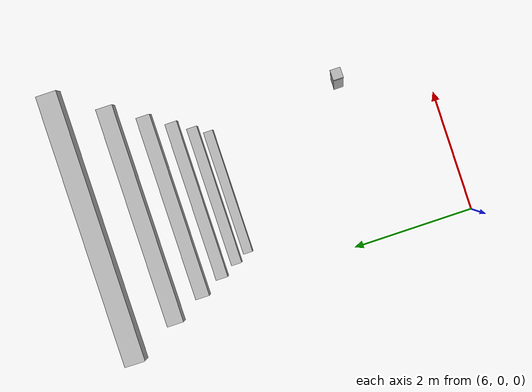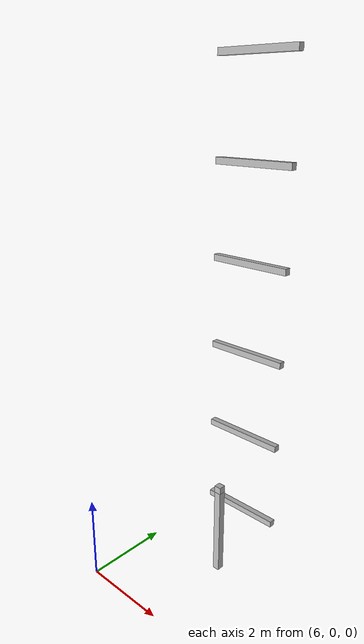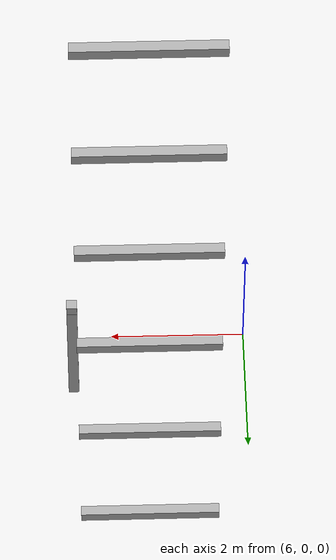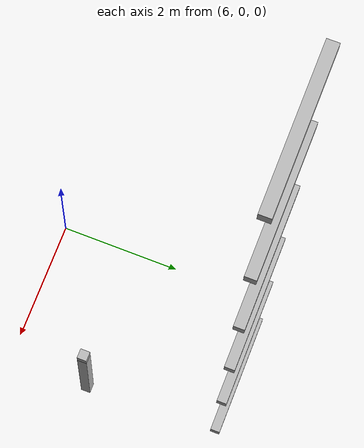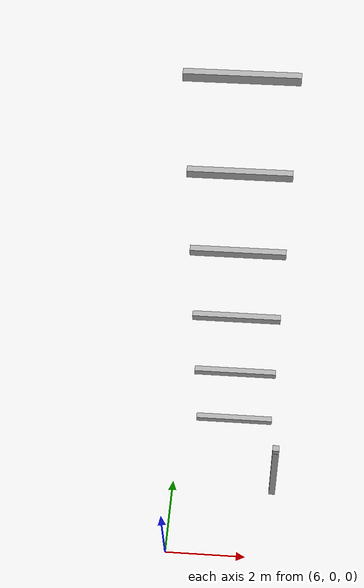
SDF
<sdf version="1.7">
 <world name="default">
  <model name="orthogonal_747_2.000.15_TS">
   <static>1</static>
   <link name="x_link_1_4_6">
    <inertial>
     <mass>1</mass>
     <inertia>
      <ixx>0.166667</ixx>
      <ixy>0</ixy>
      <ixz>0</ixz>
      <iyy>0.166667</iyy>
      <iyz>0</iyz>
      <izz>0.166667</izz>
     </inertia>
    </inertial>
    <pose>13.975 8.6 3.225 0 -0 0</pose>
    <visual name="visual_0">
     <laser_retro>1618</laser_retro>
     <geometry><box><size>2 1e-06 0.15</size></box></geometry>
     <material>
      <script><name>Gazebo/Grey</name><uri>file://media/materials/scripts/gazebo.material</uri></script>
      <shader type="pixel"><normal_map>__default__</normal_map></shader>
      <ambient>0.678 0.498 0.659 1</ambient>
      <diffuse>0.7 0.7 0.7 1</diffuse>
      <specular>0.01 0.01 0.01 1</specular>
      <emissive>0 0 0 1</emissive>
     </material>
     <pose>0 -0.075 0 0 -0 0</pose>
     <transparency>1</transparency>
    </visual>
    <visual name="visual_1">
     <laser_retro>1619</laser_retro>
     <geometry><box><size>2 1e-06 0.15</size></box></geometry>
     <material>
      <script><name>Gazebo/Grey</name><uri>file://media/materials/scripts/gazebo.material</uri></script>
      <shader type="pixel"><normal_map>__default__</normal_map></shader>
      <ambient>0.447 0.624 0.812 1</ambient>
      <diffuse>0.7 0.7 0.7 1</diffuse>
      <specular>0.01 0.01 0.01 1</specular>
      <emissive>0 0 0 1</emissive>
     </material>
     <pose>0 0.075 0 0 -0 0</pose>
     <transparency>1</transparency>
    </visual>
    <visual name="visual_2">
     <laser_retro>1620</laser_retro>
     <geometry><box><size>2 0.15 1e-06</size></box></geometry>
     <material>
      <script><name>Gazebo/Grey</name><uri>file://media/materials/scripts/gazebo.material</uri></script>
      <shader type="pixel"><normal_map>__default__</normal_map></shader>
      <ambient>0.988 0.686 0.243 1</ambient>
      <diffuse>0.7 0.7 0.7 1</diffuse>
      <specular>0.01 0.01 0.01 1</specular>
      <emissive>0 0 0 1</emissive>
     </material>
     <pose>0 0 -0.075 0 -0 0</pose>
     <transparency>1</transparency>
    </visual>
    <visual name="visual_3">
     <laser_retro>1621</laser_retro>
     <geometry><box><size>1e-06 0.15 0.15</size></box></geometry>
     <material>
      <script><name>Gazebo/Grey</name><uri>file://media/materials/scripts/gazebo.material</uri></script>
      <shader type="pixel"><normal_map>__default__</normal_map></shader>
      <ambient>0.988 0.914 0.31 1</ambient>
      <diffuse>0.7 0.7 0.7 1</diffuse>
      <specular>0.01 0.01 0.01 1</specular>
      <emissive>0 0 0 1</emissive>
     </material>
     <pose>1 0 0 0 -0 0</pose>
     <transparency>1</transparency>
    </visual>
    <visual name="visual_4">
     <laser_retro>1622</laser_retro>
     <geometry><box><size>2 0.15 1e-06</size></box></geometry>
     <material>
      <script><name>Gazebo/Grey</name><uri>file://media/materials/scripts/gazebo.material</uri></script>
      <shader type="pixel"><normal_map>__default__</normal_map></shader>
      <ambient>0.937 0.161 0.161 1</ambient>
      <diffuse>0.7 0.7 0.7 1</diffuse>
      <specular>0.01 0.01 0.01 1</specular>
      <emissive>0 0 0 1</emissive>
     </material>
     <pose>0 0 0.075 0 -0 0</pose>
     <transparency>1</transparency>
    </visual>
    <visual name="visual_5">
     <laser_retro>1623</laser_retro>
     <geometry><box><size>1e-06 0.15 0.15</size></box></geometry>
     <material>
      <script><name>Gazebo/Grey</name><uri>file://media/materials/scripts/gazebo.material</uri></script>
      <shader type="pixel"><normal_map>__default__</normal_map></shader>
      <ambient>0.541 0.886 0.204 1</ambient>
      <diffuse>0.7 0.7 0.7 1</diffuse>
      <specular>0.01 0.01 0.01 1</specular>
      <emissive>0 0 0 1</emissive>
     </material>
     <pose>-1 0 0 0 -0 0</pose>
     <transparency>1</transparency>
    </visual>
    <visual name="visual_texture">
     <geometry><box><size>1.9998 0.149985 0.149985</size></box></geometry>
     <material>
      <script>
       <uri>model://BASE_MODELS/simple_block_v2_textured/materials/scripts</uri>
       <uri>model://BASE_MODELS/simple_block_v2_textured/materials/textures</uri>
       <name>metal</name>
      </script>
     </material>
     <laser_retro>1624</laser_retro>
    </visual>
    <collision name="collision">
     <geometry><box><size>2 0.15 0.15</size></box></geometry>
     <surface>
      <friction>
       <ode><mu>1</mu><mu2>1</mu2><fdir1>0 0 0</fdir1><slip1>0</slip1><slip2>0</slip2></ode>
       <torsional>
        <coefficient>1</coefficient>
        <patch_radius>0</patch_radius>
        <surface_radius>0</surface_radius>
        <use_patch_radius>1</use_patch_radius>
        <ode><slip>0</slip></ode>
       </torsional>
      </friction>
      <bounce><restitution_coefficient>0</restitution_coefficient><threshold>1e+06</threshold></bounce>
      <contact>
       <collide_without_contact>0</collide_without_contact>
       <collide_without_contact_bitmask>1</collide_without_contact_bitmask>
       <collide_bitmask>1</collide_bitmask>
       <ode>
        <soft_cfm>0</soft_cfm>
        <soft_erp>0.2</soft_erp>
        <kp>1e+13</kp>
        <kd>1</kd>
        <max_vel>0.01</max_vel>
        <min_depth>0</min_depth>
       </ode>
       <bullet>
        <split_impulse>1</split_impulse>
        <split_impulse_penetration_threshold>-0.01</split_impulse_penetration_threshold>
        <soft_cfm>0</soft_cfm>
        <soft_erp>0.2</soft_erp>
        <kp>1e+13</kp>
        <kd>1</kd>
       </bullet>
      </contact>
     </surface>
    </collision>
   </link>
   <link name="u_link_2_3_7">
    <inertial>
     <mass>1</mass>
     <inertia>
      <ixx>0.166667</ixx>
      <ixy>0</ixy>
      <ixz>0</ixz>
      <iyy>0.166667</iyy>
      <iyz>0</iyz>
      <izz>0.166667</izz>
     </inertia>
    </inertial>
    <pose>15.05 6.45 5.375 0 -0 0</pose>
    <visual name="visual_0">
     <laser_retro>2381</laser_retro>
     <geometry><box><size>0.15 1e-06 0.15</size></box></geometry>
     <material>
      <script><name>Gazebo/Grey</name><uri>file://media/materials/scripts/gazebo.material</uri></script>
      <shader type="pixel"><normal_map>__default__</normal_map></shader>
      <ambient>0.678 0.498 0.659 1</ambient>
      <diffuse>0.7 0.7 0.7 1</diffuse>
      <specular>0.01 0.01 0.01 1</specular>
      <emissive>0 0 0 1</emissive>
     </material>
     <pose>0 -0.075 0 0 -0 0</pose>
     <transparency>1</transparency>
    </visual>
    <visual name="visual_1">
     <laser_retro>2382</laser_retro>
     <geometry><box><size>0.15 1e-06 0.15</size></box></geometry>
     <material>
      <script><name>Gazebo/Grey</name><uri>file://media/materials/scripts/gazebo.material</uri></script>
      <shader type="pixel"><normal_map>__default__</normal_map></shader>
      <ambient>0.447 0.624 0.812 1</ambient>
      <diffuse>0.7 0.7 0.7 1</diffuse>
      <specular>0.01 0.01 0.01 1</specular>
      <emissive>0 0 0 1</emissive>
     </material>
     <pose>0 0.075 0 0 -0 0</pose>
     <transparency>1</transparency>
    </visual>
    <visual name="visual_2">
     <laser_retro>2383</laser_retro>
     <geometry><box><size>0.15 0.15 1e-06</size></box></geometry>
     <material>
      <script><name>Gazebo/Grey</name><uri>file://media/materials/scripts/gazebo.material</uri></script>
      <shader type="pixel"><normal_map>__default__</normal_map></shader>
      <ambient>0.988 0.686 0.243 1</ambient>
      <diffuse>0.7 0.7 0.7 1</diffuse>
      <specular>0.01 0.01 0.01 1</specular>
      <emissive>0 0 0 1</emissive>
     </material>
     <pose>0 0 -0.075 0 -0 0</pose>
     <transparency>1</transparency>
    </visual>
    <visual name="visual_3">
     <laser_retro>2384</laser_retro>
     <geometry><box><size>1e-06 0.15 0.15</size></box></geometry>
     <material>
      <script><name>Gazebo/Grey</name><uri>file://media/materials/scripts/gazebo.material</uri></script>
      <shader type="pixel"><normal_map>__default__</normal_map></shader>
      <ambient>0.988 0.914 0.31 1</ambient>
      <diffuse>0.7 0.7 0.7 1</diffuse>
      <specular>0.01 0.01 0.01 1</specular>
      <emissive>0 0 0 1</emissive>
     </material>
     <pose>0.075 0 0 0 -0 0</pose>
     <transparency>1</transparency>
    </visual>
    <visual name="visual_4">
     <laser_retro>2385</laser_retro>
     <geometry><box><size>0.15 0.15 1e-06</size></box></geometry>
     <material>
      <script><name>Gazebo/Grey</name><uri>file://media/materials/scripts/gazebo.material</uri></script>
      <shader type="pixel"><normal_map>__default__</normal_map></shader>
      <ambient>0.937 0.161 0.161 1</ambient>
      <diffuse>0.7 0.7 0.7 1</diffuse>
      <specular>0.01 0.01 0.01 1</specular>
      <emissive>0 0 0 1</emissive>
     </material>
     <pose>0 0 0.075 0 -0 0</pose>
     <transparency>1</transparency>
    </visual>
    <visual name="visual_5">
     <laser_retro>2386</laser_retro>
     <geometry><box><size>1e-06 0.15 0.15</size></box></geometry>
     <material>
      <script><name>Gazebo/Grey</name><uri>file://media/materials/scripts/gazebo.material</uri></script>
      <shader type="pixel"><normal_map>__default__</normal_map></shader>
      <ambient>0.541 0.886 0.204 1</ambient>
      <diffuse>0.7 0.7 0.7 1</diffuse>
      <specular>0.01 0.01 0.01 1</specular>
      <emissive>0 0 0 1</emissive>
     </material>
     <pose>-0.075 0 0 0 -0 0</pose>
     <transparency>1</transparency>
    </visual>
    <visual name="visual_texture">
     <geometry><box><size>0.149985 0.149985 0.149985</size></box></geometry>
     <material>
      <script>
       <uri>model://BASE_MODELS/simple_block_v2_textured/materials/scripts</uri>
       <uri>model://BASE_MODELS/simple_block_v2_textured/materials/textures</uri>
       <name>metal</name>
      </script>
     </material>
     <laser_retro>2387</laser_retro>
    </visual>
    <collision name="collision">
     <geometry><box><size>0.15 0.15 0.15</size></box></geometry>
     <surface>
      <friction>
       <ode><mu>1</mu><mu2>1</mu2><fdir1>0 0 0</fdir1><slip1>0</slip1><slip2>0</slip2></ode>
       <torsional>
        <coefficient>1</coefficient>
        <patch_radius>0</patch_radius>
        <surface_radius>0</surface_radius>
        <use_patch_radius>1</use_patch_radius>
        <ode><slip>0</slip></ode>
       </torsional>
      </friction>
      <bounce><restitution_coefficient>0</restitution_coefficient><threshold>1e+06</threshold></bounce>
      <contact>
       <collide_without_contact>0</collide_without_contact>
       <collide_without_contact_bitmask>1</collide_without_contact_bitmask>
       <collide_bitmask>1</collide_bitmask>
       <ode>
        <soft_cfm>0</soft_cfm>
        <soft_erp>0.2</soft_erp>
        <kp>1e+13</kp>
        <kd>1</kd>
        <max_vel>0.01</max_vel>
        <min_depth>0</min_depth>
       </ode>
       <bullet>
        <split_impulse>1</split_impulse>
        <split_impulse_penetration_threshold>-0.01</split_impulse_penetration_threshold>
        <soft_cfm>0</soft_cfm>
        <soft_erp>0.2</soft_erp>
        <kp>1e+13</kp>
        <kd>1</kd>
       </bullet>
      </contact>
     </surface>
    </collision>
   </link>
   <link name="z_link_2_3_7">
    <inertial>
     <mass>1</mass>
     <inertia>
      <ixx>0.166667</ixx>
      <ixy>0</ixy>
      <ixz>0</ixz>
      <iyy>0.166667</iyy>
      <iyz>0</iyz>
      <izz>0.166667</izz>
     </inertia>
    </inertial>
    <pose>15.05 6.45 4.3 0 -0 0</pose>
    <visual name="visual_0">
     <laser_retro>2388</laser_retro>
     <geometry><box><size>0.15 1e-06 2</size></box></geometry>
     <material>
      <script><name>Gazebo/Grey</name><uri>file://media/materials/scripts/gazebo.material</uri></script>
      <shader type="pixel"><normal_map>__default__</normal_map></shader>
      <ambient>0.678 0.498 0.659 1</ambient>
      <diffuse>0.7 0.7 0.7 1</diffuse>
      <specular>0.01 0.01 0.01 1</specular>
      <emissive>0 0 0 1</emissive>
     </material>
     <pose>0 -0.075 0 0 -0 0</pose>
     <transparency>1</transparency>
    </visual>
    <visual name="visual_1">
     <laser_retro>2389</laser_retro>
     <geometry><box><size>0.15 1e-06 2</size></box></geometry>
     <material>
      <script><name>Gazebo/Grey</name><uri>file://media/materials/scripts/gazebo.material</uri></script>
      <shader type="pixel"><normal_map>__default__</normal_map></shader>
      <ambient>0.447 0.624 0.812 1</ambient>
      <diffuse>0.7 0.7 0.7 1</diffuse>
      <specular>0.01 0.01 0.01 1</specular>
      <emissive>0 0 0 1</emissive>
     </material>
     <pose>0 0.075 0 0 -0 0</pose>
     <transparency>1</transparency>
    </visual>
    <visual name="visual_2">
     <laser_retro>2390</laser_retro>
     <geometry><box><size>0.15 0.15 1e-06</size></box></geometry>
     <material>
      <script><name>Gazebo/Grey</name><uri>file://media/materials/scripts/gazebo.material</uri></script>
      <shader type="pixel"><normal_map>__default__</normal_map></shader>
      <ambient>0.988 0.686 0.243 1</ambient>
      <diffuse>0.7 0.7 0.7 1</diffuse>
      <specular>0.01 0.01 0.01 1</specular>
      <emissive>0 0 0 1</emissive>
     </material>
     <pose>0 0 -1 0 -0 0</pose>
     <transparency>1</transparency>
    </visual>
    <visual name="visual_3">
     <laser_retro>2391</laser_retro>
     <geometry><box><size>1e-06 0.15 2</size></box></geometry>
     <material>
      <script><name>Gazebo/Grey</name><uri>file://media/materials/scripts/gazebo.material</uri></script>
      <shader type="pixel"><normal_map>__default__</normal_map></shader>
      <ambient>0.988 0.914 0.31 1</ambient>
      <diffuse>0.7 0.7 0.7 1</diffuse>
      <specular>0.01 0.01 0.01 1</specular>
      <emissive>0 0 0 1</emissive>
     </material>
     <pose>0.075 0 0 0 -0 0</pose>
     <transparency>1</transparency>
    </visual>
    <visual name="visual_4">
     <laser_retro>2392</laser_retro>
     <geometry><box><size>0.15 0.15 1e-06</size></box></geometry>
     <material>
      <script><name>Gazebo/Grey</name><uri>file://media/materials/scripts/gazebo.material</uri></script>
      <shader type="pixel"><normal_map>__default__</normal_map></shader>
      <ambient>0.937 0.161 0.161 1</ambient>
      <diffuse>0.7 0.7 0.7 1</diffuse>
      <specular>0.01 0.01 0.01 1</specular>
      <emissive>0 0 0 1</emissive>
     </material>
     <pose>0 0 1 0 -0 0</pose>
     <transparency>1</transparency>
    </visual>
    <visual name="visual_5">
     <laser_retro>2393</laser_retro>
     <geometry><box><size>1e-06 0.15 2</size></box></geometry>
     <material>
      <script><name>Gazebo/Grey</name><uri>file://media/materials/scripts/gazebo.material</uri></script>
      <shader type="pixel"><normal_map>__default__</normal_map></shader>
      <ambient>0.541 0.886 0.204 1</ambient>
      <diffuse>0.7 0.7 0.7 1</diffuse>
      <specular>0.01 0.01 0.01 1</specular>
      <emissive>0 0 0 1</emissive>
     </material>
     <pose>-0.075 0 0 0 -0 0</pose>
     <transparency>1</transparency>
    </visual>
    <visual name="visual_texture">
     <geometry><box><size>0.149985 0.149985 1.9998</size></box></geometry>
     <material>
      <script>
       <uri>model://BASE_MODELS/simple_block_v2_textured/materials/scripts</uri>
       <uri>model://BASE_MODELS/simple_block_v2_textured/materials/textures</uri>
       <name>metal</name>
      </script>
     </material>
     <laser_retro>2394</laser_retro>
    </visual>
    <collision name="collision">
     <geometry><box><size>0.15 0.15 2</size></box></geometry>
     <surface>
      <friction>
       <ode><mu>1</mu><mu2>1</mu2><fdir1>0 0 0</fdir1><slip1>0</slip1><slip2>0</slip2></ode>
       <torsional>
        <coefficient>1</coefficient>
        <patch_radius>0</patch_radius>
        <surface_radius>0</surface_radius>
        <use_patch_radius>1</use_patch_radius>
        <ode><slip>0</slip></ode>
       </torsional>
      </friction>
      <bounce><restitution_coefficient>0</restitution_coefficient><threshold>1e+06</threshold></bounce>
      <contact>
       <collide_without_contact>0</collide_without_contact>
       <collide_without_contact_bitmask>1</collide_without_contact_bitmask>
       <collide_bitmask>1</collide_bitmask>
       <ode>
        <soft_cfm>0</soft_cfm>
        <soft_erp>0.2</soft_erp>
        <kp>1e+13</kp>
        <kd>1</kd>
        <max_vel>0.01</max_vel>
        <min_depth>0</min_depth>
       </ode>
       <bullet>
        <split_impulse>1</split_impulse>
        <split_impulse_penetration_threshold>-0.01</split_impulse_penetration_threshold>
        <soft_cfm>0</soft_cfm>
        <soft_erp>0.2</soft_erp>
        <kp>1e+13</kp>
        <kd>1</kd>
       </bullet>
      </contact>
     </surface>
    </collision>
   </link>
   <link name="x_link_2_4_6">
    <inertial>
     <mass>1</mass>
     <inertia>
      <ixx>0.166667</ixx>
      <ixy>0</ixy>
      <ixz>0</ixz>
      <iyy>0.166667</iyy>
      <iyz>0</iyz>
      <izz>0.166667</izz>
     </inertia>
    </inertial>
    <pose>13.975 8.6 5.375 0 -0 0</pose>
    <visual name="visual_0">
     <laser_retro>2521</laser_retro>
     <geometry><box><size>2 1e-06 0.15</size></box></geometry>
     <material>
      <script><name>Gazebo/Grey</name><uri>file://media/materials/scripts/gazebo.material</uri></script>
      <shader type="pixel"><normal_map>__default__</normal_map></shader>
      <ambient>0.678 0.498 0.659 1</ambient>
      <diffuse>0.7 0.7 0.7 1</diffuse>
      <specular>0.01 0.01 0.01 1</specular>
      <emissive>0 0 0 1</emissive>
     </material>
     <pose>0 -0.075 0 0 -0 0</pose>
     <transparency>1</transparency>
    </visual>
    <visual name="visual_1">
     <laser_retro>2522</laser_retro>
     <geometry><box><size>2 1e-06 0.15</size></box></geometry>
     <material>
      <script><name>Gazebo/Grey</name><uri>file://media/materials/scripts/gazebo.material</uri></script>
      <shader type="pixel"><normal_map>__default__</normal_map></shader>
      <ambient>0.447 0.624 0.812 1</ambient>
      <diffuse>0.7 0.7 0.7 1</diffuse>
      <specular>0.01 0.01 0.01 1</specular>
      <emissive>0 0 0 1</emissive>
     </material>
     <pose>0 0.075 0 0 -0 0</pose>
     <transparency>1</transparency>
    </visual>
    <visual name="visual_2">
     <laser_retro>2523</laser_retro>
     <geometry><box><size>2 0.15 1e-06</size></box></geometry>
     <material>
      <script><name>Gazebo/Grey</name><uri>file://media/materials/scripts/gazebo.material</uri></script>
      <shader type="pixel"><normal_map>__default__</normal_map></shader>
      <ambient>0.988 0.686 0.243 1</ambient>
      <diffuse>0.7 0.7 0.7 1</diffuse>
      <specular>0.01 0.01 0.01 1</specular>
      <emissive>0 0 0 1</emissive>
     </material>
     <pose>0 0 -0.075 0 -0 0</pose>
     <transparency>1</transparency>
    </visual>
    <visual name="visual_3">
     <laser_retro>2524</laser_retro>
     <geometry><box><size>1e-06 0.15 0.15</size></box></geometry>
     <material>
      <script><name>Gazebo/Grey</name><uri>file://media/materials/scripts/gazebo.material</uri></script>
      <shader type="pixel"><normal_map>__default__</normal_map></shader>
      <ambient>0.988 0.914 0.31 1</ambient>
      <diffuse>0.7 0.7 0.7 1</diffuse>
      <specular>0.01 0.01 0.01 1</specular>
      <emissive>0 0 0 1</emissive>
     </material>
     <pose>1 0 0 0 -0 0</pose>
     <transparency>1</transparency>
    </visual>
    <visual name="visual_4">
     <laser_retro>2525</laser_retro>
     <geometry><box><size>2 0.15 1e-06</size></box></geometry>
     <material>
      <script><name>Gazebo/Grey</name><uri>file://media/materials/scripts/gazebo.material</uri></script>
      <shader type="pixel"><normal_map>__default__</normal_map></shader>
      <ambient>0.937 0.161 0.161 1</ambient>
      <diffuse>0.7 0.7 0.7 1</diffuse>
      <specular>0.01 0.01 0.01 1</specular>
      <emissive>0 0 0 1</emissive>
     </material>
     <pose>0 0 0.075 0 -0 0</pose>
     <transparency>1</transparency>
    </visual>
    <visual name="visual_5">
     <laser_retro>2526</laser_retro>
     <geometry><box><size>1e-06 0.15 0.15</size></box></geometry>
     <material>
      <script><name>Gazebo/Grey</name><uri>file://media/materials/scripts/gazebo.material</uri></script>
      <shader type="pixel"><normal_map>__default__</normal_map></shader>
      <ambient>0.541 0.886 0.204 1</ambient>
      <diffuse>0.7 0.7 0.7 1</diffuse>
      <specular>0.01 0.01 0.01 1</specular>
      <emissive>0 0 0 1</emissive>
     </material>
     <pose>-1 0 0 0 -0 0</pose>
     <transparency>1</transparency>
    </visual>
    <visual name="visual_texture">
     <geometry><box><size>1.9998 0.149985 0.149985</size></box></geometry>
     <material>
      <script>
       <uri>model://BASE_MODELS/simple_block_v2_textured/materials/scripts</uri>
       <uri>model://BASE_MODELS/simple_block_v2_textured/materials/textures</uri>
       <name>metal</name>
      </script>
     </material>
     <laser_retro>2527</laser_retro>
    </visual>
    <collision name="collision">
     <geometry><box><size>2 0.15 0.15</size></box></geometry>
     <surface>
      <friction>
       <ode><mu>1</mu><mu2>1</mu2><fdir1>0 0 0</fdir1><slip1>0</slip1><slip2>0</slip2></ode>
       <torsional>
        <coefficient>1</coefficient>
        <patch_radius>0</patch_radius>
        <surface_radius>0</surface_radius>
        <use_patch_radius>1</use_patch_radius>
        <ode><slip>0</slip></ode>
       </torsional>
      </friction>
      <bounce><restitution_coefficient>0</restitution_coefficient><threshold>1e+06</threshold></bounce>
      <contact>
       <collide_without_contact>0</collide_without_contact>
       <collide_without_contact_bitmask>1</collide_without_contact_bitmask>
       <collide_bitmask>1</collide_bitmask>
       <ode>
        <soft_cfm>0</soft_cfm>
        <soft_erp>0.2</soft_erp>
        <kp>1e+13</kp>
        <kd>1</kd>
        <max_vel>0.01</max_vel>
        <min_depth>0</min_depth>
       </ode>
       <bullet>
        <split_impulse>1</split_impulse>
        <split_impulse_penetration_threshold>-0.01</split_impulse_penetration_threshold>
        <soft_cfm>0</soft_cfm>
        <soft_erp>0.2</soft_erp>
        <kp>1e+13</kp>
        <kd>1</kd>
       </bullet>
      </contact>
     </surface>
    </collision>
   </link>
   <link name="x_link_3_4_6">
    <inertial>
     <mass>1</mass>
     <inertia>
      <ixx>0.166667</ixx>
      <ixy>0</ixy>
      <ixz>0</ixz>
      <iyy>0.166667</iyy>
      <iyz>0</iyz>
      <izz>0.166667</izz>
     </inertia>
    </inertial>
    <pose>13.975 8.6 7.525 0 -0 0</pose>
    <visual name="visual_0">
     <laser_retro>3424</laser_retro>
     <geometry><box><size>2 1e-06 0.15</size></box></geometry>
     <material>
      <script><name>Gazebo/Grey</name><uri>file://media/materials/scripts/gazebo.material</uri></script>
      <shader type="pixel"><normal_map>__default__</normal_map></shader>
      <ambient>0.678 0.498 0.659 1</ambient>
      <diffuse>0.7 0.7 0.7 1</diffuse>
      <specular>0.01 0.01 0.01 1</specular>
      <emissive>0 0 0 1</emissive>
     </material>
     <pose>0 -0.075 0 0 -0 0</pose>
     <transparency>1</transparency>
    </visual>
    <visual name="visual_1">
     <laser_retro>3425</laser_retro>
     <geometry><box><size>2 1e-06 0.15</size></box></geometry>
     <material>
      <script><name>Gazebo/Grey</name><uri>file://media/materials/scripts/gazebo.material</uri></script>
      <shader type="pixel"><normal_map>__default__</normal_map></shader>
      <ambient>0.447 0.624 0.812 1</ambient>
      <diffuse>0.7 0.7 0.7 1</diffuse>
      <specular>0.01 0.01 0.01 1</specular>
      <emissive>0 0 0 1</emissive>
     </material>
     <pose>0 0.075 0 0 -0 0</pose>
     <transparency>1</transparency>
    </visual>
    <visual name="visual_2">
     <laser_retro>3426</laser_retro>
     <geometry><box><size>2 0.15 1e-06</size></box></geometry>
     <material>
      <script><name>Gazebo/Grey</name><uri>file://media/materials/scripts/gazebo.material</uri></script>
      <shader type="pixel"><normal_map>__default__</normal_map></shader>
      <ambient>0.988 0.686 0.243 1</ambient>
      <diffuse>0.7 0.7 0.7 1</diffuse>
      <specular>0.01 0.01 0.01 1</specular>
      <emissive>0 0 0 1</emissive>
     </material>
     <pose>0 0 -0.075 0 -0 0</pose>
     <transparency>1</transparency>
    </visual>
    <visual name="visual_3">
     <laser_retro>3427</laser_retro>
     <geometry><box><size>1e-06 0.15 0.15</size></box></geometry>
     <material>
      <script><name>Gazebo/Grey</name><uri>file://media/materials/scripts/gazebo.material</uri></script>
      <shader type="pixel"><normal_map>__default__</normal_map></shader>
      <ambient>0.988 0.914 0.31 1</ambient>
      <diffuse>0.7 0.7 0.7 1</diffuse>
      <specular>0.01 0.01 0.01 1</specular>
      <emissive>0 0 0 1</emissive>
     </material>
     <pose>1 0 0 0 -0 0</pose>
     <transparency>1</transparency>
    </visual>
    <visual name="visual_4">
     <laser_retro>3428</laser_retro>
     <geometry><box><size>2 0.15 1e-06</size></box></geometry>
     <material>
      <script><name>Gazebo/Grey</name><uri>file://media/materials/scripts/gazebo.material</uri></script>
      <shader type="pixel"><normal_map>__default__</normal_map></shader>
      <ambient>0.937 0.161 0.161 1</ambient>
      <diffuse>0.7 0.7 0.7 1</diffuse>
      <specular>0.01 0.01 0.01 1</specular>
      <emissive>0 0 0 1</emissive>
     </material>
     <pose>0 0 0.075 0 -0 0</pose>
     <transparency>1</transparency>
    </visual>
    <visual name="visual_5">
     <laser_retro>3429</laser_retro>
     <geometry><box><size>1e-06 0.15 0.15</size></box></geometry>
     <material>
      <script><name>Gazebo/Grey</name><uri>file://media/materials/scripts/gazebo.material</uri></script>
      <shader type="pixel"><normal_map>__default__</normal_map></shader>
      <ambient>0.541 0.886 0.204 1</ambient>
      <diffuse>0.7 0.7 0.7 1</diffuse>
      <specular>0.01 0.01 0.01 1</specular>
      <emissive>0 0 0 1</emissive>
     </material>
     <pose>-1 0 0 0 -0 0</pose>
     <transparency>1</transparency>
    </visual>
    <visual name="visual_texture">
     <geometry><box><size>1.9998 0.149985 0.149985</size></box></geometry>
     <material>
      <script>
       <uri>model://BASE_MODELS/simple_block_v2_textured/materials/scripts</uri>
       <uri>model://BASE_MODELS/simple_block_v2_textured/materials/textures</uri>
       <name>metal</name>
      </script>
     </material>
     <laser_retro>3430</laser_retro>
    </visual>
    <collision name="collision">
     <geometry><box><size>2 0.15 0.15</size></box></geometry>
     <surface>
      <friction>
       <ode><mu>1</mu><mu2>1</mu2><fdir1>0 0 0</fdir1><slip1>0</slip1><slip2>0</slip2></ode>
       <torsional>
        <coefficient>1</coefficient>
        <patch_radius>0</patch_radius>
        <surface_radius>0</surface_radius>
        <use_patch_radius>1</use_patch_radius>
        <ode><slip>0</slip></ode>
       </torsional>
      </friction>
      <bounce><restitution_coefficient>0</restitution_coefficient><threshold>1e+06</threshold></bounce>
      <contact>
       <collide_without_contact>0</collide_without_contact>
       <collide_without_contact_bitmask>1</collide_without_contact_bitmask>
       <collide_bitmask>1</collide_bitmask>
       <ode>
        <soft_cfm>0</soft_cfm>
        <soft_erp>0.2</soft_erp>
        <kp>1e+13</kp>
        <kd>1</kd>
        <max_vel>0.01</max_vel>
        <min_depth>0</min_depth>
       </ode>
       <bullet>
        <split_impulse>1</split_impulse>
        <split_impulse_penetration_threshold>-0.01</split_impulse_penetration_threshold>
        <soft_cfm>0</soft_cfm>
        <soft_erp>0.2</soft_erp>
        <kp>1e+13</kp>
        <kd>1</kd>
       </bullet>
      </contact>
     </surface>
    </collision>
   </link>
   <link name="x_link_4_4_6">
    <inertial>
     <mass>1</mass>
     <inertia>
      <ixx>0.166667</ixx>
      <ixy>0</ixy>
      <ixz>0</ixz>
      <iyy>0.166667</iyy>
      <iyz>0</iyz>
      <izz>0.166667</izz>
     </inertia>
    </inertial>
    <pose>13.975 8.6 9.675 0 -0 0</pose>
    <visual name="visual_0">
     <laser_retro>4327</laser_retro>
     <geometry><box><size>2 1e-06 0.15</size></box></geometry>
     <material>
      <script><name>Gazebo/Grey</name><uri>file://media/materials/scripts/gazebo.material</uri></script>
      <shader type="pixel"><normal_map>__default__</normal_map></shader>
      <ambient>0.678 0.498 0.659 1</ambient>
      <diffuse>0.7 0.7 0.7 1</diffuse>
      <specular>0.01 0.01 0.01 1</specular>
      <emissive>0 0 0 1</emissive>
     </material>
     <pose>0 -0.075 0 0 -0 0</pose>
     <transparency>1</transparency>
    </visual>
    <visual name="visual_1">
     <laser_retro>4328</laser_retro>
     <geometry><box><size>2 1e-06 0.15</size></box></geometry>
     <material>
      <script><name>Gazebo/Grey</name><uri>file://media/materials/scripts/gazebo.material</uri></script>
      <shader type="pixel"><normal_map>__default__</normal_map></shader>
      <ambient>0.447 0.624 0.812 1</ambient>
      <diffuse>0.7 0.7 0.7 1</diffuse>
      <specular>0.01 0.01 0.01 1</specular>
      <emissive>0 0 0 1</emissive>
     </material>
     <pose>0 0.075 0 0 -0 0</pose>
     <transparency>1</transparency>
    </visual>
    <visual name="visual_2">
     <laser_retro>4329</laser_retro>
     <geometry><box><size>2 0.15 1e-06</size></box></geometry>
     <material>
      <script><name>Gazebo/Grey</name><uri>file://media/materials/scripts/gazebo.material</uri></script>
      <shader type="pixel"><normal_map>__default__</normal_map></shader>
      <ambient>0.988 0.686 0.243 1</ambient>
      <diffuse>0.7 0.7 0.7 1</diffuse>
      <specular>0.01 0.01 0.01 1</specular>
      <emissive>0 0 0 1</emissive>
     </material>
     <pose>0 0 -0.075 0 -0 0</pose>
     <transparency>1</transparency>
    </visual>
    <visual name="visual_3">
     <laser_retro>4330</laser_retro>
     <geometry><box><size>1e-06 0.15 0.15</size></box></geometry>
     <material>
      <script><name>Gazebo/Grey</name><uri>file://media/materials/scripts/gazebo.material</uri></script>
      <shader type="pixel"><normal_map>__default__</normal_map></shader>
      <ambient>0.988 0.914 0.31 1</ambient>
      <diffuse>0.7 0.7 0.7 1</diffuse>
      <specular>0.01 0.01 0.01 1</specular>
      <emissive>0 0 0 1</emissive>
     </material>
     <pose>1 0 0 0 -0 0</pose>
     <transparency>1</transparency>
    </visual>
    <visual name="visual_4">
     <laser_retro>4331</laser_retro>
     <geometry><box><size>2 0.15 1e-06</size></box></geometry>
     <material>
      <script><name>Gazebo/Grey</name><uri>file://media/materials/scripts/gazebo.material</uri></script>
      <shader type="pixel"><normal_map>__default__</normal_map></shader>
      <ambient>0.937 0.161 0.161 1</ambient>
      <diffuse>0.7 0.7 0.7 1</diffuse>
      <specular>0.01 0.01 0.01 1</specular>
      <emissive>0 0 0 1</emissive>
     </material>
     <pose>0 0 0.075 0 -0 0</pose>
     <transparency>1</transparency>
    </visual>
    <visual name="visual_5">
     <laser_retro>4332</laser_retro>
     <geometry><box><size>1e-06 0.15 0.15</size></box></geometry>
     <material>
      <script><name>Gazebo/Grey</name><uri>file://media/materials/scripts/gazebo.material</uri></script>
      <shader type="pixel"><normal_map>__default__</normal_map></shader>
      <ambient>0.541 0.886 0.204 1</ambient>
      <diffuse>0.7 0.7 0.7 1</diffuse>
      <specular>0.01 0.01 0.01 1</specular>
      <emissive>0 0 0 1</emissive>
     </material>
     <pose>-1 0 0 0 -0 0</pose>
     <transparency>1</transparency>
    </visual>
    <visual name="visual_texture">
     <geometry><box><size>1.9998 0.149985 0.149985</size></box></geometry>
     <material>
      <script>
       <uri>model://BASE_MODELS/simple_block_v2_textured/materials/scripts</uri>
       <uri>model://BASE_MODELS/simple_block_v2_textured/materials/textures</uri>
       <name>metal</name>
      </script>
     </material>
     <laser_retro>4333</laser_retro>
    </visual>
    <collision name="collision">
     <geometry><box><size>2 0.15 0.15</size></box></geometry>
     <surface>
      <friction>
       <ode><mu>1</mu><mu2>1</mu2><fdir1>0 0 0</fdir1><slip1>0</slip1><slip2>0</slip2></ode>
       <torsional>
        <coefficient>1</coefficient>
        <patch_radius>0</patch_radius>
        <surface_radius>0</surface_radius>
        <use_patch_radius>1</use_patch_radius>
        <ode><slip>0</slip></ode>
       </torsional>
      </friction>
      <bounce><restitution_coefficient>0</restitution_coefficient><threshold>1e+06</threshold></bounce>
      <contact>
       <collide_without_contact>0</collide_without_contact>
       <collide_without_contact_bitmask>1</collide_without_contact_bitmask>
       <collide_bitmask>1</collide_bitmask>
       <ode>
        <soft_cfm>0</soft_cfm>
        <soft_erp>0.2</soft_erp>
        <kp>1e+13</kp>
        <kd>1</kd>
        <max_vel>0.01</max_vel>
        <min_depth>0</min_depth>
       </ode>
       <bullet>
        <split_impulse>1</split_impulse>
        <split_impulse_penetration_threshold>-0.01</split_impulse_penetration_threshold>
        <soft_cfm>0</soft_cfm>
        <soft_erp>0.2</soft_erp>
        <kp>1e+13</kp>
        <kd>1</kd>
       </bullet>
      </contact>
     </surface>
    </collision>
   </link>
   <link name="x_link_5_4_6">
    <inertial>
     <mass>1</mass>
     <inertia>
      <ixx>0.166667</ixx>
      <ixy>0</ixy>
      <ixz>0</ixz>
      <iyy>0.166667</iyy>
      <iyz>0</iyz>
      <izz>0.166667</izz>
     </inertia>
    </inertial>
    <pose>13.975 8.6 11.825 0 -0 0</pose>
    <visual name="visual_0">
     <laser_retro>5230</laser_retro>
     <geometry><box><size>2 1e-06 0.15</size></box></geometry>
     <material>
      <script><name>Gazebo/Grey</name><uri>file://media/materials/scripts/gazebo.material</uri></script>
      <shader type="pixel"><normal_map>__default__</normal_map></shader>
      <ambient>0.678 0.498 0.659 1</ambient>
      <diffuse>0.7 0.7 0.7 1</diffuse>
      <specular>0.01 0.01 0.01 1</specular>
      <emissive>0 0 0 1</emissive>
     </material>
     <pose>0 -0.075 0 0 -0 0</pose>
     <transparency>1</transparency>
    </visual>
    <visual name="visual_1">
     <laser_retro>5231</laser_retro>
     <geometry><box><size>2 1e-06 0.15</size></box></geometry>
     <material>
      <script><name>Gazebo/Grey</name><uri>file://media/materials/scripts/gazebo.material</uri></script>
      <shader type="pixel"><normal_map>__default__</normal_map></shader>
      <ambient>0.447 0.624 0.812 1</ambient>
      <diffuse>0.7 0.7 0.7 1</diffuse>
      <specular>0.01 0.01 0.01 1</specular>
      <emissive>0 0 0 1</emissive>
     </material>
     <pose>0 0.075 0 0 -0 0</pose>
     <transparency>1</transparency>
    </visual>
    <visual name="visual_2">
     <laser_retro>5232</laser_retro>
     <geometry><box><size>2 0.15 1e-06</size></box></geometry>
     <material>
      <script><name>Gazebo/Grey</name><uri>file://media/materials/scripts/gazebo.material</uri></script>
      <shader type="pixel"><normal_map>__default__</normal_map></shader>
      <ambient>0.988 0.686 0.243 1</ambient>
      <diffuse>0.7 0.7 0.7 1</diffuse>
      <specular>0.01 0.01 0.01 1</specular>
      <emissive>0 0 0 1</emissive>
     </material>
     <pose>0 0 -0.075 0 -0 0</pose>
     <transparency>1</transparency>
    </visual>
    <visual name="visual_3">
     <laser_retro>5233</laser_retro>
     <geometry><box><size>1e-06 0.15 0.15</size></box></geometry>
     <material>
      <script><name>Gazebo/Grey</name><uri>file://media/materials/scripts/gazebo.material</uri></script>
      <shader type="pixel"><normal_map>__default__</normal_map></shader>
      <ambient>0.988 0.914 0.31 1</ambient>
      <diffuse>0.7 0.7 0.7 1</diffuse>
      <specular>0.01 0.01 0.01 1</specular>
      <emissive>0 0 0 1</emissive>
     </material>
     <pose>1 0 0 0 -0 0</pose>
     <transparency>1</transparency>
    </visual>
    <visual name="visual_4">
     <laser_retro>5234</laser_retro>
     <geometry><box><size>2 0.15 1e-06</size></box></geometry>
     <material>
      <script><name>Gazebo/Grey</name><uri>file://media/materials/scripts/gazebo.material</uri></script>
      <shader type="pixel"><normal_map>__default__</normal_map></shader>
      <ambient>0.937 0.161 0.161 1</ambient>
      <diffuse>0.7 0.7 0.7 1</diffuse>
      <specular>0.01 0.01 0.01 1</specular>
      <emissive>0 0 0 1</emissive>
     </material>
     <pose>0 0 0.075 0 -0 0</pose>
     <transparency>1</transparency>
    </visual>
    <visual name="visual_5">
     <laser_retro>5235</laser_retro>
     <geometry><box><size>1e-06 0.15 0.15</size></box></geometry>
     <material>
      <script><name>Gazebo/Grey</name><uri>file://media/materials/scripts/gazebo.material</uri></script>
      <shader type="pixel"><normal_map>__default__</normal_map></shader>
      <ambient>0.541 0.886 0.204 1</ambient>
      <diffuse>0.7 0.7 0.7 1</diffuse>
      <specular>0.01 0.01 0.01 1</specular>
      <emissive>0 0 0 1</emissive>
     </material>
     <pose>-1 0 0 0 -0 0</pose>
     <transparency>1</transparency>
    </visual>
    <visual name="visual_texture">
     <geometry><box><size>1.9998 0.149985 0.149985</size></box></geometry>
     <material>
      <script>
       <uri>model://BASE_MODELS/simple_block_v2_textured/materials/scripts</uri>
       <uri>model://BASE_MODELS/simple_block_v2_textured/materials/textures</uri>
       <name>metal</name>
      </script>
     </material>
     <laser_retro>5236</laser_retro>
    </visual>
    <collision name="collision">
     <geometry><box><size>2 0.15 0.15</size></box></geometry>
     <surface>
      <friction>
       <ode><mu>1</mu><mu2>1</mu2><fdir1>0 0 0</fdir1><slip1>0</slip1><slip2>0</slip2></ode>
       <torsional>
        <coefficient>1</coefficient>
        <patch_radius>0</patch_radius>
        <surface_radius>0</surface_radius>
        <use_patch_radius>1</use_patch_radius>
        <ode><slip>0</slip></ode>
       </torsional>
      </friction>
      <bounce><restitution_coefficient>0</restitution_coefficient><threshold>1e+06</threshold></bounce>
      <contact>
       <collide_without_contact>0</collide_without_contact>
       <collide_without_contact_bitmask>1</collide_without_contact_bitmask>
       <collide_bitmask>1</collide_bitmask>
       <ode>
        <soft_cfm>0</soft_cfm>
        <soft_erp>0.2</soft_erp>
        <kp>1e+13</kp>
        <kd>1</kd>
        <max_vel>0.01</max_vel>
        <min_depth>0</min_depth>
       </ode>
       <bullet>
        <split_impulse>1</split_impulse>
        <split_impulse_penetration_threshold>-0.01</split_impulse_penetration_threshold>
        <soft_cfm>0</soft_cfm>
        <soft_erp>0.2</soft_erp>
        <kp>1e+13</kp>
        <kd>1</kd>
       </bullet>
      </contact>
     </surface>
    </collision>
   </link>
   <link name="x_link_6_4_6">
    <inertial>
     <mass>1</mass>
     <inertia>
      <ixx>0.166667</ixx>
      <ixy>0</ixy>
      <ixz>0</ixz>
      <iyy>0.166667</iyy>
      <iyz>0</iyz>
      <izz>0.166667</izz>
     </inertia>
    </inertial>
    <pose>13.975 8.6 13.975 0 -0 0</pose>
    <visual name="visual_0">
     <laser_retro>6259</laser_retro>
     <geometry><box><size>2 1e-06 0.15</size></box></geometry>
     <material>
      <script><name>Gazebo/Grey</name><uri>file://media/materials/scripts/gazebo.material</uri></script>
      <shader type="pixel"><normal_map>__default__</normal_map></shader>
      <ambient>0.678 0.498 0.659 1</ambient>
      <diffuse>0.7 0.7 0.7 1</diffuse>
      <specular>0.01 0.01 0.01 1</specular>
      <emissive>0 0 0 1</emissive>
     </material>
     <pose>0 -0.075 0 0 -0 0</pose>
     <transparency>1</transparency>
    </visual>
    <visual name="visual_1">
     <laser_retro>6260</laser_retro>
     <geometry><box><size>2 1e-06 0.15</size></box></geometry>
     <material>
      <script><name>Gazebo/Grey</name><uri>file://media/materials/scripts/gazebo.material</uri></script>
      <shader type="pixel"><normal_map>__default__</normal_map></shader>
      <ambient>0.447 0.624 0.812 1</ambient>
      <diffuse>0.7 0.7 0.7 1</diffuse>
      <specular>0.01 0.01 0.01 1</specular>
      <emissive>0 0 0 1</emissive>
     </material>
     <pose>0 0.075 0 0 -0 0</pose>
     <transparency>1</transparency>
    </visual>
    <visual name="visual_2">
     <laser_retro>6261</laser_retro>
     <geometry><box><size>2 0.15 1e-06</size></box></geometry>
     <material>
      <script><name>Gazebo/Grey</name><uri>file://media/materials/scripts/gazebo.material</uri></script>
      <shader type="pixel"><normal_map>__default__</normal_map></shader>
      <ambient>0.988 0.686 0.243 1</ambient>
      <diffuse>0.7 0.7 0.7 1</diffuse>
      <specular>0.01 0.01 0.01 1</specular>
      <emissive>0 0 0 1</emissive>
     </material>
     <pose>0 0 -0.075 0 -0 0</pose>
     <transparency>1</transparency>
    </visual>
    <visual name="visual_3">
     <laser_retro>6262</laser_retro>
     <geometry><box><size>1e-06 0.15 0.15</size></box></geometry>
     <material>
      <script><name>Gazebo/Grey</name><uri>file://media/materials/scripts/gazebo.material</uri></script>
      <shader type="pixel"><normal_map>__default__</normal_map></shader>
      <ambient>0.988 0.914 0.31 1</ambient>
      <diffuse>0.7 0.7 0.7 1</diffuse>
      <specular>0.01 0.01 0.01 1</specular>
      <emissive>0 0 0 1</emissive>
     </material>
     <pose>1 0 0 0 -0 0</pose>
     <transparency>1</transparency>
    </visual>
    <visual name="visual_4">
     <laser_retro>6263</laser_retro>
     <geometry><box><size>2 0.15 1e-06</size></box></geometry>
     <material>
      <script><name>Gazebo/Grey</name><uri>file://media/materials/scripts/gazebo.material</uri></script>
      <shader type="pixel"><normal_map>__default__</normal_map></shader>
      <ambient>0.937 0.161 0.161 1</ambient>
      <diffuse>0.7 0.7 0.7 1</diffuse>
      <specular>0.01 0.01 0.01 1</specular>
      <emissive>0 0 0 1</emissive>
     </material>
     <pose>0 0 0.075 0 -0 0</pose>
     <transparency>1</transparency>
    </visual>
    <visual name="visual_5">
     <laser_retro>6264</laser_retro>
     <geometry><box><size>1e-06 0.15 0.15</size></box></geometry>
     <material>
      <script><name>Gazebo/Grey</name><uri>file://media/materials/scripts/gazebo.material</uri></script>
      <shader type="pixel"><normal_map>__default__</normal_map></shader>
      <ambient>0.541 0.886 0.204 1</ambient>
      <diffuse>0.7 0.7 0.7 1</diffuse>
      <specular>0.01 0.01 0.01 1</specular>
      <emissive>0 0 0 1</emissive>
     </material>
     <pose>-1 0 0 0 -0 0</pose>
     <transparency>1</transparency>
    </visual>
    <visual name="visual_texture">
     <geometry><box><size>1.9998 0.149985 0.149985</size></box></geometry>
     <material>
      <script>
       <uri>model://BASE_MODELS/simple_block_v2_textured/materials/scripts</uri>
       <uri>model://BASE_MODELS/simple_block_v2_textured/materials/textures</uri>
       <name>metal</name>
      </script>
     </material>
     <laser_retro>6265</laser_retro>
    </visual>
    <collision name="collision">
     <geometry><box><size>2 0.15 0.15</size></box></geometry>
     <surface>
      <friction>
       <ode><mu>1</mu><mu2>1</mu2><fdir1>0 0 0</fdir1><slip1>0</slip1><slip2>0</slip2></ode>
       <torsional>
        <coefficient>1</coefficient>
        <patch_radius>0</patch_radius>
        <surface_radius>0</surface_radius>
        <use_patch_radius>1</use_patch_radius>
        <ode><slip>0</slip></ode>
       </torsional>
      </friction>
      <bounce><restitution_coefficient>0</restitution_coefficient><threshold>1e+06</threshold></bounce>
      <contact>
       <collide_without_contact>0</collide_without_contact>
       <collide_without_contact_bitmask>1</collide_without_contact_bitmask>
       <collide_bitmask>1</collide_bitmask>
       <ode>
        <soft_cfm>0</soft_cfm>
        <soft_erp>0.2</soft_erp>
        <kp>1e+13</kp>
        <kd>1</kd>
        <max_vel>0.01</max_vel>
        <min_depth>0</min_depth>
       </ode>
       <bullet>
        <split_impulse>1</split_impulse>
        <split_impulse_penetration_threshold>-0.01</split_impulse_penetration_threshold>
        <soft_cfm>0</soft_cfm>
        <soft_erp>0.2</soft_erp>
        <kp>1e+13</kp>
        <kd>1</kd>
       </bullet>
      </contact>
     </surface>
    </collision>
   </link>
   <pose>-6.47624 -5 -2.5 0 -0 0</pose>
  </model>
 </world>
</sdf>
